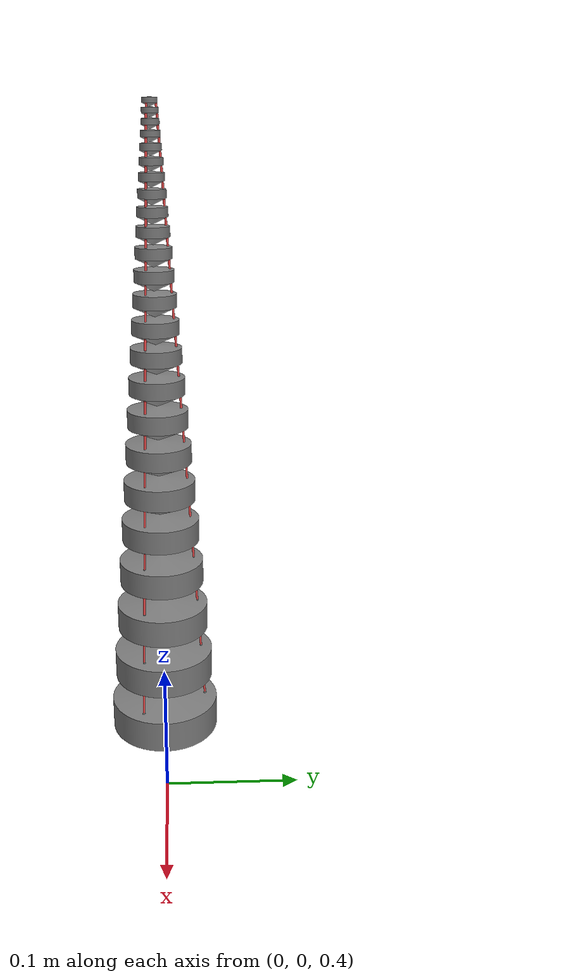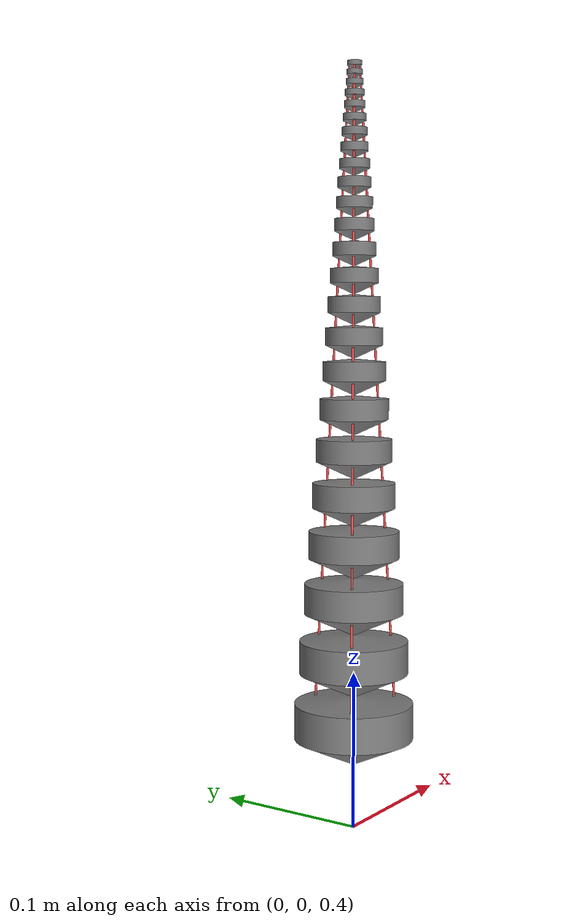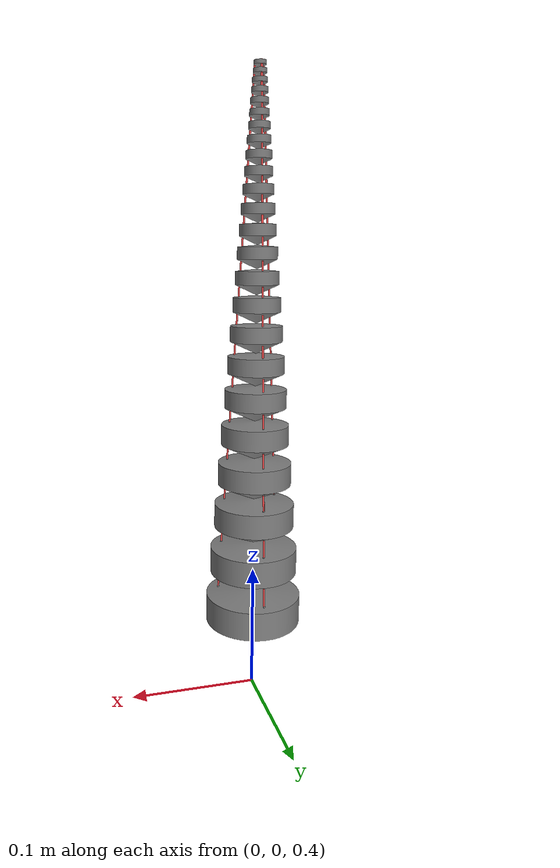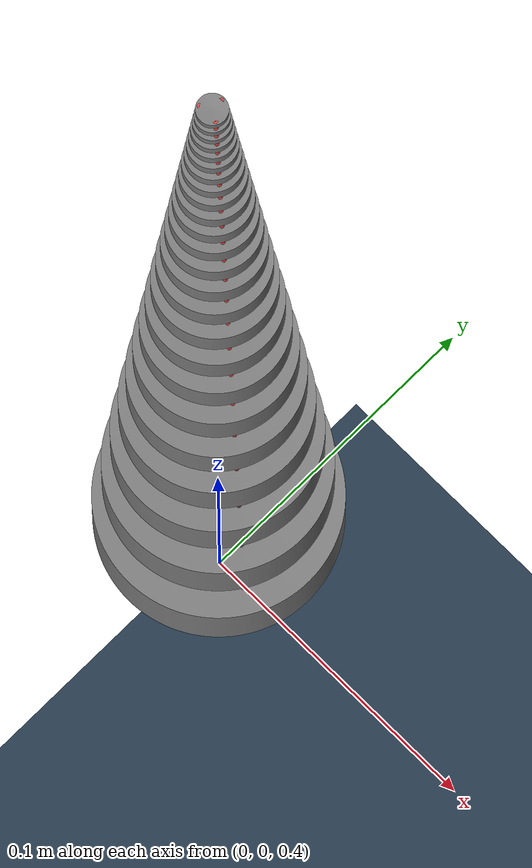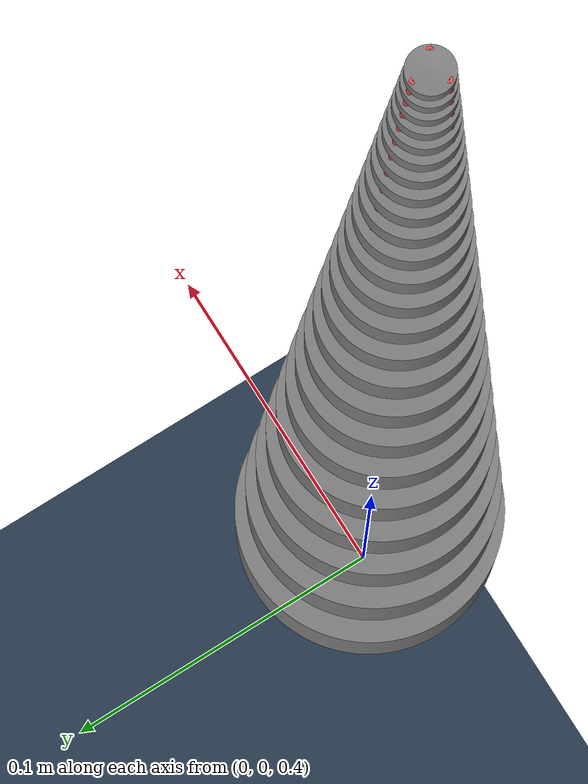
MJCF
<mujoco model="spiral_robot">
  <compiler angle="radian"/>
  <option gravity="0 0 0"/>
  <asset>
    <mesh name="baselink_1" file="baselink.stl" scale="0.001000000 0.001000000 0.001000000"/>
    <mesh name="baselink_2" file="baselink.stl" scale="0.000911774 0.000911774 0.000911774"/>
    <mesh name="baselink_3" file="baselink.stl" scale="0.000831332 0.000831332 0.000831332"/>
    <mesh name="baselink_4" file="baselink.stl" scale="0.000757987 0.000757987 0.000757987"/>
    <mesh name="baselink_5" file="baselink.stl" scale="0.000691113 0.000691113 0.000691113"/>
    <mesh name="baselink_6" file="baselink.stl" scale="0.000630139 0.000630139 0.000630139"/>
    <mesh name="baselink_7" file="baselink.stl" scale="0.000574545 0.000574545 0.000574545"/>
    <mesh name="baselink_8" file="baselink.stl" scale="0.000523855 0.000523855 0.000523855"/>
    <mesh name="baselink_9" file="baselink.stl" scale="0.000477638 0.000477638 0.000477638"/>
    <mesh name="baselink_10" file="baselink.stl" scale="0.000435498 0.000435498 0.000435498"/>
    <mesh name="baselink_11" file="baselink.stl" scale="0.000397076 0.000397076 0.000397076"/>
    <mesh name="baselink_12" file="baselink.stl" scale="0.000362043 0.000362043 0.000362043"/>
    <mesh name="baselink_13" file="baselink.stl" scale="0.000330102 0.000330102 0.000330102"/>
    <mesh name="baselink_14" file="baselink.stl" scale="0.000300978 0.000300978 0.000300978"/>
    <mesh name="baselink_15" file="baselink.stl" scale="0.000274424 0.000274424 0.000274424"/>
    <mesh name="baselink_16" file="baselink.stl" scale="0.000250213 0.000250213 0.000250213"/>
    <mesh name="baselink_17" file="baselink.stl" scale="0.000228138 0.000228138 0.000228138"/>
    <mesh name="baselink_18" file="baselink.stl" scale="0.000208010 0.000208010 0.000208010"/>
    <mesh name="baselink_19" file="baselink.stl" scale="0.000189658 0.000189658 0.000189658"/>
    <mesh name="baselink_20" file="baselink.stl" scale="0.000172926 0.000172926 0.000172926"/>
    <mesh name="baselink_21" file="baselink.stl" scale="0.000157669 0.000157669 0.000157669"/>
    <mesh name="baselink_22" file="baselink.stl" scale="0.000143759 0.000143759 0.000143759"/>
    <mesh name="baselink_23" file="baselink.stl" scale="0.000131075 0.000131075 0.000131075"/>
    <mesh name="baselink_24" file="baselink.stl" scale="0.000119511 0.000119511 0.000119511"/>
    <texture name="texplane" type="2d" builtin="checker" rgb1=".2 .3 .4" rgb2=".1 0.15 0.2" width="512" height="512" mark="cross" markrgb=".8 .8 .8"/>
    <material name="matplane" reflectance="0.3" texture="texplane" texrepeat="1 1" texuniform="true"/>
  </asset>
  <worldbody>
    <geom name="ground" type="plane" size="10 10 1" pos="0 0 0" quat="1 0 0 0" material="matplane" condim="1"/>
    <light pos="1 0.5 0.7" dir="-1 -0.5 -1" directional="true" castshadow="false" diffuse="1 1 1" specular="0.3 0.3 0.3"/>
    <body name="link1" pos="0 0 0.440708894">
      <geom type="mesh" mesh="baselink_1"/>
      <site name="s1_1" pos="0.000000000 0.031049073 0.014328357" size="0.001000 0.001000 0.001000"/>
      <site name="s1_2" pos="0.000000000 0.029250304 0.040960512" size="0.001000 0.001000 0.001000"/>
      <site name="s1_3" pos="-0.026889286 -0.015524536 0.014328357" size="0.001000 0.001000 0.001000"/>
      <site name="s1_4" pos="-0.025331507 -0.014625152 0.040960512" size="0.001000 0.001000 0.001000"/>
      <site name="s1_5" pos="0.026889286 -0.015524536 0.014328357" size="0.001000 0.001000 0.001000"/>
      <site name="s1_6" pos="0.025331507 -0.014625152 0.040960512" size="0.001000 0.001000 0.001000"/>
      <body name="link2" pos="0 0 0.043636849">
        <joint type="ball" stiffness="0.040000" damping="0.020000"/>
        <geom type="mesh" mesh="baselink_2"/>
        <site name="s2_1" pos="0.000000000 0.028309746 0.013064227" size="0.000912 0.000912 0.000912"/>
        <site name="s2_2" pos="0.000000000 0.026669675 0.037346742" size="0.000912 0.000912 0.000912"/>
        <site name="s2_3" pos="-0.024516959 -0.014154873 0.013064227" size="0.000912 0.000912 0.000912"/>
        <site name="s2_4" pos="-0.023096616 -0.013334838 0.037346742" size="0.000912 0.000912 0.000912"/>
        <site name="s2_5" pos="0.024516959 -0.014154873 0.013064227" size="0.000912 0.000912 0.000912"/>
        <site name="s2_6" pos="0.023096616 -0.013334838 0.037346742" size="0.000912 0.000912 0.000912"/>
      <body name="link3" pos="0 0 0.039786957">
        <joint type="ball" stiffness="0.033253" damping="0.018235"/>
        <geom type="mesh" mesh="baselink_3"/>
        <site name="s3_1" pos="0.000000000 0.025812098 0.011911627" size="0.000831 0.000831 0.000831"/>
        <site name="s3_2" pos="0.000000000 0.024316724 0.034051798" size="0.000831 0.000831 0.000831"/>
        <site name="s3_3" pos="-0.022353933 -0.012906049 0.011911627" size="0.000831 0.000831 0.000831"/>
        <site name="s3_4" pos="-0.021058900 -0.012158362 0.034051798" size="0.000831 0.000831 0.000831"/>
        <site name="s3_5" pos="0.022353933 -0.012906049 0.011911627" size="0.000831 0.000831 0.000831"/>
        <site name="s3_6" pos="0.021058900 -0.012158362 0.034051798" size="0.000831 0.000831 0.000831"/>
      <body name="link4" pos="0 0 0.036276724">
        <joint type="ball" stiffness="0.027645" damping="0.016627"/>
        <geom type="mesh" mesh="baselink_4"/>
        <site name="s4_1" pos="0.000000000 0.023534807 0.010860715" size="0.000758 0.000758 0.000758"/>
        <site name="s4_2" pos="0.000000000 0.022171363 0.031047554" size="0.000758 0.000758 0.000758"/>
        <site name="s4_3" pos="-0.020381741 -0.011767404 0.010860715" size="0.000758 0.000758 0.000758"/>
        <site name="s4_4" pos="-0.019200964 -0.011085682 0.031047554" size="0.000758 0.000758 0.000758"/>
        <site name="s4_5" pos="0.020381741 -0.011767404 0.010860715" size="0.000758 0.000758 0.000758"/>
        <site name="s4_6" pos="0.019200964 -0.011085682 0.031047554" size="0.000758 0.000758 0.000758"/>
      <body name="link5" pos="0 0 0.033076183">
        <joint type="ball" stiffness="0.022982" damping="0.015160"/>
        <geom type="mesh" mesh="baselink_5"/>
        <site name="s5_1" pos="0.000000000 0.021458432 0.009902520" size="0.000691 0.000691 0.000691"/>
        <site name="s5_2" pos="0.000000000 0.020215279 0.028308361" size="0.000691 0.000691 0.000691"/>
        <site name="s5_3" pos="-0.018583547 -0.010729216 0.009902520" size="0.000691 0.000691 0.000691"/>
        <site name="s5_4" pos="-0.017506945 -0.010107639 0.028308361" size="0.000691 0.000691 0.000691"/>
        <site name="s5_5" pos="0.018583547 -0.010729216 0.009902520" size="0.000691 0.000691 0.000691"/>
        <site name="s5_6" pos="0.017506945 -0.010107639 0.028308361" size="0.000691 0.000691 0.000691"/>
      <body name="link6" pos="0 0 0.030158013">
        <joint type="ball" stiffness="0.019106" damping="0.013822"/>
        <geom type="mesh" mesh="baselink_6"/>
        <site name="s6_1" pos="0.000000000 0.019565246 0.009028863" size="0.000630 0.000630 0.000630"/>
        <site name="s6_2" pos="0.000000000 0.018431771 0.025810835" size="0.000630 0.000630 0.000630"/>
        <site name="s6_3" pos="-0.016944000 -0.009782623 0.009028863" size="0.000630 0.000630 0.000630"/>
        <site name="s6_4" pos="-0.015962382 -0.009215885 0.025810835" size="0.000630 0.000630 0.000630"/>
        <site name="s6_5" pos="0.016944000 -0.009782623 0.009028863" size="0.000630 0.000630 0.000630"/>
        <site name="s6_6" pos="0.015962382 -0.009215885 0.025810835" size="0.000630 0.000630 0.000630"/>
      <body name="link7" pos="0 0 0.027497301">
        <joint type="ball" stiffness="0.015883" damping="0.012603"/>
        <geom type="mesh" mesh="baselink_7"/>
        <site name="s7_1" pos="0.000000000 0.017839088 0.008232285" size="0.000575 0.000575 0.000575"/>
        <site name="s7_2" pos="0.000000000 0.016805615 0.023533656" size="0.000575 0.000575 0.000575"/>
        <site name="s7_3" pos="-0.015449103 -0.008919544 0.008232285" size="0.000575 0.000575 0.000575"/>
        <site name="s7_4" pos="-0.014554089 -0.008402807 0.023533656" size="0.000575 0.000575 0.000575"/>
        <site name="s7_5" pos="0.015449103 -0.008919544 0.008232285" size="0.000575 0.000575 0.000575"/>
        <site name="s7_6" pos="0.014554089 -0.008402807 0.023533656" size="0.000575 0.000575 0.000575"/>
      <body name="link8" pos="0 0 0.025071331">
        <joint type="ball" stiffness="0.013204" damping="0.011491"/>
        <geom type="mesh" mesh="baselink_8"/>
        <site name="s8_1" pos="0.000000000 0.016265222 0.007505986" size="0.000524 0.000524 0.000524"/>
        <site name="s8_2" pos="0.000000000 0.015322927 0.021457382" size="0.000524 0.000524 0.000524"/>
        <site name="s8_3" pos="-0.014086095 -0.008132611 0.007505986" size="0.000524 0.000524 0.000524"/>
        <site name="s8_4" pos="-0.013270044 -0.007661464 0.021457382" size="0.000524 0.000524 0.000524"/>
        <site name="s8_5" pos="0.014086095 -0.008132611 0.007505986" size="0.000524 0.000524 0.000524"/>
        <site name="s8_6" pos="0.013270044 -0.007661464 0.021457382" size="0.000524 0.000524 0.000524"/>
      <body name="link9" pos="0 0 0.022859395">
        <joint type="ball" stiffness="0.010977" damping="0.010477"/>
        <geom type="mesh" mesh="baselink_9"/>
        <site name="s9_1" pos="0.000000000 0.014830211 0.006843765" size="0.000478 0.000478 0.000478"/>
        <site name="s9_2" pos="0.000000000 0.013971051 0.019564289" size="0.000478 0.000478 0.000478"/>
        <site name="s9_3" pos="-0.012843339 -0.007415105 0.006843765" size="0.000478 0.000478 0.000478"/>
        <site name="s9_4" pos="-0.012099285 -0.006985525 0.019564289" size="0.000478 0.000478 0.000478"/>
        <site name="s9_5" pos="0.012843339 -0.007415105 0.006843765" size="0.000478 0.000478 0.000478"/>
        <site name="s9_6" pos="0.012099285 -0.006985525 0.019564289" size="0.000478 0.000478 0.000478"/>
      <body name="link10" pos="0 0 0.020842608">
        <joint type="ball" stiffness="0.009126" damping="0.009553"/>
        <geom type="mesh" mesh="baselink_10"/>
        <site name="s10_1" pos="0.000000000 0.013521805 0.006239969" size="0.000435 0.000435 0.000435"/>
        <site name="s10_2" pos="0.000000000 0.012738445 0.017838215" size="0.000435 0.000435 0.000435"/>
        <site name="s10_3" pos="-0.011710226 -0.006760902 0.006239969" size="0.000435 0.000435 0.000435"/>
        <site name="s10_4" pos="-0.011031817 -0.006369222 0.017838215" size="0.000435 0.000435 0.000435"/>
        <site name="s10_5" pos="0.011710226 -0.006760902 0.006239969" size="0.000435 0.000435 0.000435"/>
        <site name="s10_6" pos="0.011031817 -0.006369222 0.017838215" size="0.000435 0.000435 0.000435"/>
      <body name="link11" pos="0 0 0.019003754">
        <joint type="ball" stiffness="0.007586" damping="0.008710"/>
        <geom type="mesh" mesh="baselink_11"/>
        <site name="s11_1" pos="0.000000000 0.012328834 0.005689443" size="0.000397 0.000397 0.000397"/>
        <site name="s11_2" pos="0.000000000 0.011614586 0.016264426" size="0.000397 0.000397 0.000397"/>
        <site name="s11_3" pos="-0.010677083 -0.006164417 0.005689443" size="0.000397 0.000397 0.000397"/>
        <site name="s11_4" pos="-0.010058527 -0.005807293 0.016264426" size="0.000397 0.000397 0.000397"/>
        <site name="s11_5" pos="0.010677083 -0.006164417 0.005689443" size="0.000397 0.000397 0.000397"/>
        <site name="s11_6" pos="0.010058527 -0.005807293 0.016264426" size="0.000397 0.000397 0.000397"/>
      <body name="link12" pos="0 0 0.017327134">
        <joint type="ball" stiffness="0.006307" damping="0.007942"/>
        <geom type="mesh" mesh="baselink_12"/>
        <site name="s12_1" pos="0.000000000 0.011241113 0.005187488" size="0.000362 0.000362 0.000362"/>
        <site name="s12_2" pos="0.000000000 0.010589881 0.014829485" size="0.000362 0.000362 0.000362"/>
        <site name="s12_3" pos="-0.009735090 -0.005620557 0.005187488" size="0.000362 0.000362 0.000362"/>
        <site name="s12_4" pos="-0.009171106 -0.005294940 0.014829485" size="0.000362 0.000362 0.000362"/>
        <site name="s12_5" pos="0.009735090 -0.005620557 0.005187488" size="0.000362 0.000362 0.000362"/>
        <site name="s12_6" pos="0.009171106 -0.005294940 0.014829485" size="0.000362 0.000362 0.000362"/>
      <body name="link13" pos="0 0 0.015798435">
        <joint type="ball" stiffness="0.005243" damping="0.007241"/>
        <geom type="mesh" mesh="baselink_13"/>
        <site name="s13_1" pos="0.000000000 0.010249358 0.004729818" size="0.000330 0.000330 0.000330"/>
        <site name="s13_2" pos="0.000000000 0.009655581 0.013521143" size="0.000330 0.000330 0.000330"/>
        <site name="s13_3" pos="-0.008876204 -0.005124679 0.004729818" size="0.000330 0.000330 0.000330"/>
        <site name="s13_4" pos="-0.008361978 -0.004827790 0.013521143" size="0.000330 0.000330 0.000330"/>
        <site name="s13_5" pos="0.008876204 -0.005124679 0.004729818" size="0.000330 0.000330 0.000330"/>
        <site name="s13_6" pos="0.008361978 -0.004827790 0.013521143" size="0.000330 0.000330 0.000330"/>
      <body name="link14" pos="0 0 0.014404607">
        <joint type="ball" stiffness="0.004359" damping="0.006602"/>
        <geom type="mesh" mesh="baselink_14"/>
        <site name="s14_1" pos="0.000000000 0.009345101 0.004312526" size="0.000301 0.000301 0.000301"/>
        <site name="s14_2" pos="0.000000000 0.008803710 0.012328230" size="0.000301 0.000301 0.000301"/>
        <site name="s14_3" pos="-0.008093095 -0.004672550 0.004312526" size="0.000301 0.000301 0.000301"/>
        <site name="s14_4" pos="-0.007624237 -0.004401855 0.012328230" size="0.000301 0.000301 0.000301"/>
        <site name="s14_5" pos="0.008093095 -0.004672550 0.004312526" size="0.000301 0.000301 0.000301"/>
        <site name="s14_6" pos="0.007624237 -0.004401855 0.012328230" size="0.000301 0.000301 0.000301"/>
      <body name="link15" pos="0 0 0.013133750">
        <joint type="ball" stiffness="0.003624" damping="0.006020"/>
        <geom type="mesh" mesh="baselink_15"/>
        <site name="s15_1" pos="0.000000000 0.008520623 0.003932051" size="0.000274 0.000274 0.000274"/>
        <site name="s15_2" pos="0.000000000 0.008026997 0.011240563" size="0.000274 0.000274 0.000274"/>
        <site name="s15_3" pos="-0.007379076 -0.004260311 0.003932051" size="0.000274 0.000274 0.000274"/>
        <site name="s15_4" pos="-0.006951583 -0.004013498 0.011240563" size="0.000274 0.000274 0.000274"/>
        <site name="s15_5" pos="0.007379076 -0.004260311 0.003932051" size="0.000274 0.000274 0.000274"/>
        <site name="s15_6" pos="0.006951583 -0.004013498 0.011240563" size="0.000274 0.000274 0.000274"/>
      <body name="link16" pos="0 0 0.011975015">
        <joint type="ball" stiffness="0.003012" damping="0.005488"/>
        <geom type="mesh" mesh="baselink_16"/>
        <site name="s16_1" pos="0.000000000 0.007768884 0.003585143" size="0.000250 0.000250 0.000250"/>
        <site name="s16_2" pos="0.000000000 0.007318809 0.010248856" size="0.000250 0.000250 0.000250"/>
        <site name="s16_3" pos="-0.006728051 -0.003884442 0.003585143" size="0.000250 0.000250 0.000250"/>
        <site name="s16_4" pos="-0.006338275 -0.003659405 0.010248856" size="0.000250 0.000250 0.000250"/>
        <site name="s16_5" pos="0.006728051 -0.003884442 0.003585143" size="0.000250 0.000250 0.000250"/>
        <site name="s16_6" pos="0.006338275 -0.003659405 0.010248856" size="0.000250 0.000250 0.000250"/>
      <body name="link17" pos="0 0 0.010918511">
        <joint type="ball" stiffness="0.002504" damping="0.005004"/>
        <geom type="mesh" mesh="baselink_17"/>
        <site name="s17_1" pos="0.000000000 0.007083469 0.003268841" size="0.000228 0.000228 0.000228"/>
        <site name="s17_2" pos="0.000000000 0.006673102 0.009344644" size="0.000228 0.000228 0.000228"/>
        <site name="s17_3" pos="-0.006134464 -0.003541735 0.003268841" size="0.000228 0.000228 0.000228"/>
        <site name="s17_4" pos="-0.005779076 -0.003336551 0.009344644" size="0.000228 0.000228 0.000228"/>
        <site name="s17_5" pos="0.006134464 -0.003541735 0.003268841" size="0.000228 0.000228 0.000228"/>
        <site name="s17_6" pos="0.005779076 -0.003336551 0.009344644" size="0.000228 0.000228 0.000228"/>
      <body name="link18" pos="0 0 0.009955217">
        <joint type="ball" stiffness="0.002082" damping="0.004563"/>
        <geom type="mesh" mesh="baselink_18"/>
        <site name="s18_1" pos="0.000000000 0.006458525 0.002980445" size="0.000208 0.000208 0.000208"/>
        <site name="s18_2" pos="0.000000000 0.006084363 0.008520206" size="0.000208 0.000208 0.000208"/>
        <site name="s18_3" pos="-0.005593247 -0.003229262 0.002980445" size="0.000208 0.000208 0.000208"/>
        <site name="s18_4" pos="-0.005269213 -0.003042181 0.008520206" size="0.000208 0.000208 0.000208"/>
        <site name="s18_5" pos="0.005593247 -0.003229262 0.002980445" size="0.000208 0.000208 0.000208"/>
        <site name="s18_6" pos="0.005269213 -0.003042181 0.008520206" size="0.000208 0.000208 0.000208"/>
      <body name="link19" pos="0 0 0.009076911">
        <joint type="ball" stiffness="0.001731" damping="0.004160"/>
        <geom type="mesh" mesh="baselink_19"/>
        <site name="s19_1" pos="0.000000000 0.005888717 0.002717493" size="0.000190 0.000190 0.000190"/>
        <site name="s19_2" pos="0.000000000 0.005547565 0.007768504" size="0.000190 0.000190 0.000190"/>
        <site name="s19_3" pos="-0.005099778 -0.002944358 0.002717493" size="0.000190 0.000190 0.000190"/>
        <site name="s19_4" pos="-0.004804332 -0.002773783 0.007768504" size="0.000190 0.000190 0.000190"/>
        <site name="s19_5" pos="0.005099778 -0.002944358 0.002717493" size="0.000190 0.000190 0.000190"/>
        <site name="s19_6" pos="0.004804332 -0.002773783 0.007768504" size="0.000190 0.000190 0.000190"/>
      <body name="link20" pos="0 0 0.008276094">
        <joint type="ball" stiffness="0.001439" damping="0.003793"/>
        <geom type="mesh" mesh="baselink_20"/>
        <site name="s20_1" pos="0.000000000 0.005369181 0.002477740" size="0.000173 0.000173 0.000173"/>
        <site name="s20_2" pos="0.000000000 0.005058127 0.007083122" size="0.000173 0.000173 0.000173"/>
        <site name="s20_3" pos="-0.004649847 -0.002684590 0.002477740" size="0.000173 0.000173 0.000173"/>
        <site name="s20_4" pos="-0.004380467 -0.002529064 0.007083122" size="0.000173 0.000173 0.000173"/>
        <site name="s20_5" pos="0.004649847 -0.002684590 0.002477740" size="0.000173 0.000173 0.000173"/>
        <site name="s20_6" pos="0.004380467 -0.002529064 0.007083122" size="0.000173 0.000173 0.000173"/>
      <body name="link21" pos="0 0 0.007545930">
        <joint type="ball" stiffness="0.001196" damping="0.003459"/>
        <geom type="mesh" mesh="baselink_21"/>
        <site name="s21_1" pos="0.000000000 0.004895481 0.002259140" size="0.000158 0.000158 0.000158"/>
        <site name="s21_2" pos="0.000000000 0.004611870 0.006458209" size="0.000158 0.000158 0.000158"/>
        <site name="s21_3" pos="-0.004239611 -0.002447740 0.002259140" size="0.000158 0.000158 0.000158"/>
        <site name="s21_4" pos="-0.003993997 -0.002305935 0.006458209" size="0.000158 0.000158 0.000158"/>
        <site name="s21_5" pos="0.004239611 -0.002447740 0.002259140" size="0.000158 0.000158 0.000158"/>
        <site name="s21_6" pos="0.003993997 -0.002305935 0.006458209" size="0.000158 0.000158 0.000158"/>
      <body name="link22" pos="0 0 0.006880185">
        <joint type="ball" stiffness="0.000994" damping="0.003153"/>
        <geom type="mesh" mesh="baselink_22"/>
        <site name="s22_1" pos="0.000000000 0.004463573 0.002059826" size="0.000144 0.000144 0.000144"/>
        <site name="s22_2" pos="0.000000000 0.004204985 0.005888429" size="0.000144 0.000144 0.000144"/>
        <site name="s22_3" pos="-0.003865568 -0.002231787 0.002059826" size="0.000144 0.000144 0.000144"/>
        <site name="s22_4" pos="-0.003641624 -0.002102492 0.005888429" size="0.000144 0.000144 0.000144"/>
        <site name="s22_5" pos="0.003865568 -0.002231787 0.002059826" size="0.000144 0.000144 0.000144"/>
        <site name="s22_6" pos="0.003641624 -0.002102492 0.005888429" size="0.000144 0.000144 0.000144"/>
      <body name="link23" pos="0 0 0.006273175">
        <joint type="ball" stiffness="0.000827" damping="0.002875"/>
        <geom type="mesh" mesh="baselink_23"/>
        <site name="s23_1" pos="0.000000000 0.004069771 0.001878096" size="0.000131 0.000131 0.000131"/>
        <site name="s23_2" pos="0.000000000 0.003833997 0.005368918" size="0.000131 0.000131 0.000131"/>
        <site name="s23_3" pos="-0.003524525 -0.002034886 0.001878096" size="0.000131 0.000131 0.000131"/>
        <site name="s23_4" pos="-0.003320339 -0.001916998 0.005368918" size="0.000131 0.000131 0.000131"/>
        <site name="s23_5" pos="0.003524525 -0.002034886 0.001878096" size="0.000131 0.000131 0.000131"/>
        <site name="s23_6" pos="0.003320339 -0.001916998 0.005368918" size="0.000131 0.000131 0.000131"/>
      <body name="link24" pos="0 0 0.005719720">
        <joint type="ball" stiffness="0.000687" damping="0.002622"/>
        <geom type="mesh" mesh="baselink_24"/>
        <site name="s24_1" pos="0.000000000 0.003710713 0.001712400" size="0.000120 0.000120 0.000120"/>
        <site name="s24_2" pos="0.000000000 0.003495740 0.004895241" size="0.000120 0.000120 0.000120"/>
        <site name="s24_3" pos="-0.003213572 -0.001855356 0.001712400" size="0.000120 0.000120 0.000120"/>
        <site name="s24_4" pos="-0.003027399 -0.001747870 0.004895241" size="0.000120 0.000120 0.000120"/>
        <site name="s24_5" pos="0.003213572 -0.001855356 0.001712400" size="0.000120 0.000120 0.000120"/>
        <site name="s24_6" pos="0.003027399 -0.001747870 0.004895241" size="0.000120 0.000120 0.000120"/>
      </body>
      </body>
      </body>
      </body>
      </body>
      </body>
      </body>
      </body>
      </body>
      </body>
      </body>
      </body>
      </body>
      </body>
      </body>
      </body>
      </body>
      </body>
      </body>
      </body>
      </body>
      </body>
      </body>
    </body>
  </worldbody>
  <tendon>
    <spatial name="tendon1" width="0.0007" frictionloss="0.1" rgba=".95 .3 .3 1" limited="true" range="0.176283557 1.101772234">
      <site site="s1_1"/>
      <site site="s1_2"/>
      <site site="s2_1"/>
      <site site="s2_2"/>
      <site site="s3_1"/>
      <site site="s3_2"/>
      <site site="s4_1"/>
      <site site="s4_2"/>
      <site site="s5_1"/>
      <site site="s5_2"/>
      <site site="s6_1"/>
      <site site="s6_2"/>
      <site site="s7_1"/>
      <site site="s7_2"/>
      <site site="s8_1"/>
      <site site="s8_2"/>
      <site site="s9_1"/>
      <site site="s9_2"/>
      <site site="s10_1"/>
      <site site="s10_2"/>
      <site site="s11_1"/>
      <site site="s11_2"/>
      <site site="s12_1"/>
      <site site="s12_2"/>
      <site site="s13_1"/>
      <site site="s13_2"/>
      <site site="s14_1"/>
      <site site="s14_2"/>
      <site site="s15_1"/>
      <site site="s15_2"/>
      <site site="s16_1"/>
      <site site="s16_2"/>
      <site site="s17_1"/>
      <site site="s17_2"/>
      <site site="s18_1"/>
      <site site="s18_2"/>
      <site site="s19_1"/>
      <site site="s19_2"/>
      <site site="s20_1"/>
      <site site="s20_2"/>
      <site site="s21_1"/>
      <site site="s21_2"/>
      <site site="s22_1"/>
      <site site="s22_2"/>
      <site site="s23_1"/>
      <site site="s23_2"/>
      <site site="s24_1"/>
      <site site="s24_2"/>
    </spatial>
    <spatial name="tendon2" width="0.0007" frictionloss="0.1" rgba=".95 .3 .3 1" limited="true" range="0.176283557 1.101772234">
      <site site="s1_3"/>
      <site site="s1_4"/>
      <site site="s2_3"/>
      <site site="s2_4"/>
      <site site="s3_3"/>
      <site site="s3_4"/>
      <site site="s4_3"/>
      <site site="s4_4"/>
      <site site="s5_3"/>
      <site site="s5_4"/>
      <site site="s6_3"/>
      <site site="s6_4"/>
      <site site="s7_3"/>
      <site site="s7_4"/>
      <site site="s8_3"/>
      <site site="s8_4"/>
      <site site="s9_3"/>
      <site site="s9_4"/>
      <site site="s10_3"/>
      <site site="s10_4"/>
      <site site="s11_3"/>
      <site site="s11_4"/>
      <site site="s12_3"/>
      <site site="s12_4"/>
      <site site="s13_3"/>
      <site site="s13_4"/>
      <site site="s14_3"/>
      <site site="s14_4"/>
      <site site="s15_3"/>
      <site site="s15_4"/>
      <site site="s16_3"/>
      <site site="s16_4"/>
      <site site="s17_3"/>
      <site site="s17_4"/>
      <site site="s18_3"/>
      <site site="s18_4"/>
      <site site="s19_3"/>
      <site site="s19_4"/>
      <site site="s20_3"/>
      <site site="s20_4"/>
      <site site="s21_3"/>
      <site site="s21_4"/>
      <site site="s22_3"/>
      <site site="s22_4"/>
      <site site="s23_3"/>
      <site site="s23_4"/>
      <site site="s24_3"/>
      <site site="s24_4"/>
    </spatial>
    <spatial name="tendon3" width="0.0007" frictionloss="0.1" rgba=".95 .3 .3 1" limited="true" range="0.176283557 1.101772234">
      <site site="s1_5"/>
      <site site="s1_6"/>
      <site site="s2_5"/>
      <site site="s2_6"/>
      <site site="s3_5"/>
      <site site="s3_6"/>
      <site site="s4_5"/>
      <site site="s4_6"/>
      <site site="s5_5"/>
      <site site="s5_6"/>
      <site site="s6_5"/>
      <site site="s6_6"/>
      <site site="s7_5"/>
      <site site="s7_6"/>
      <site site="s8_5"/>
      <site site="s8_6"/>
      <site site="s9_5"/>
      <site site="s9_6"/>
      <site site="s10_5"/>
      <site site="s10_6"/>
      <site site="s11_5"/>
      <site site="s11_6"/>
      <site site="s12_5"/>
      <site site="s12_6"/>
      <site site="s13_5"/>
      <site site="s13_6"/>
      <site site="s14_5"/>
      <site site="s14_6"/>
      <site site="s15_5"/>
      <site site="s15_6"/>
      <site site="s16_5"/>
      <site site="s16_6"/>
      <site site="s17_5"/>
      <site site="s17_6"/>
      <site site="s18_5"/>
      <site site="s18_6"/>
      <site site="s19_5"/>
      <site site="s19_6"/>
      <site site="s20_5"/>
      <site site="s20_6"/>
      <site site="s21_5"/>
      <site site="s21_6"/>
      <site site="s22_5"/>
      <site site="s22_6"/>
      <site site="s23_5"/>
      <site site="s23_6"/>
      <site site="s24_5"/>
      <site site="s24_6"/>
    </spatial>
  </tendon>
  <actuator>
    <muscle name="act1" tendon="tendon1" ctrllimited="true" ctrlrange="0 1" force="5" lengthrange="0.176283557 1.101772234"/>
    <muscle name="act2" tendon="tendon2" ctrllimited="true" ctrlrange="0 1" force="5" lengthrange="0.176283557 1.101772234"/>
    <muscle name="act3" tendon="tendon3" ctrllimited="true" ctrlrange="0 1" force="5" lengthrange="0.176283557 1.101772234"/>
  </actuator>
</mujoco>
